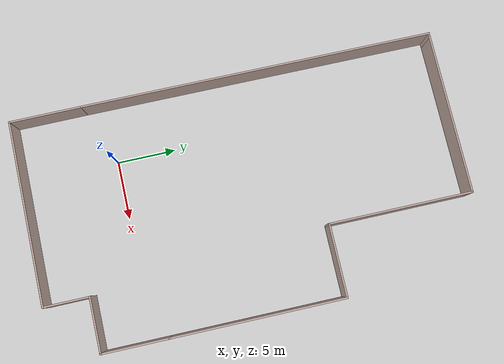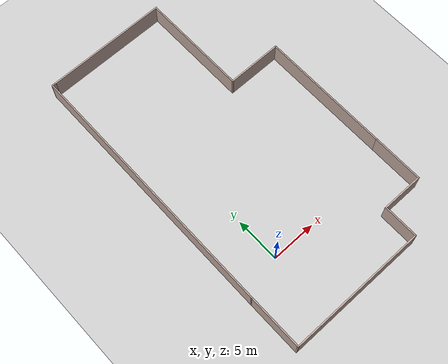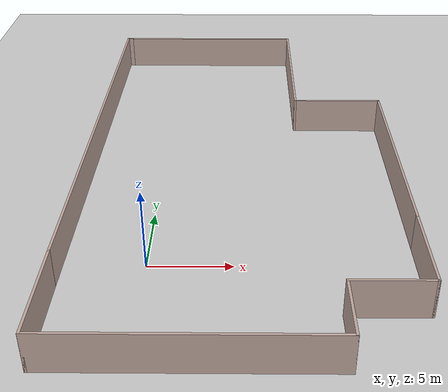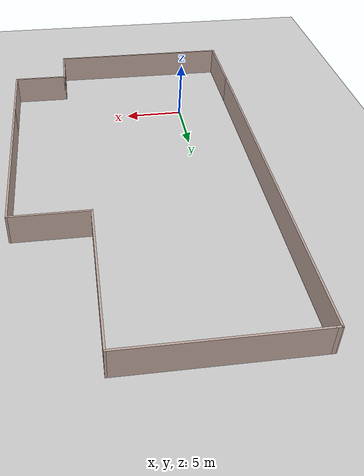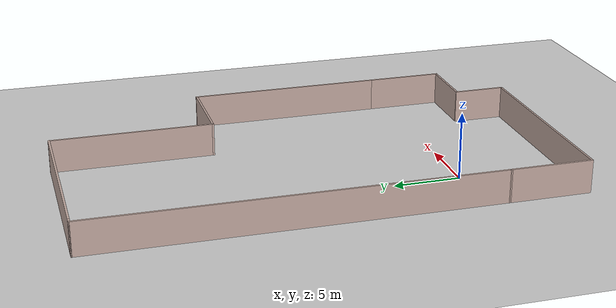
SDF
<sdf version="1.6">
 <world name="default">
  <light name="sun" type="directional">
   <pose>0 0 10 0 -0 0</pose>
   <diffuse>0.8 0.8 0.8 1</diffuse>
   <specular>0.2 0.2 0.2 1</specular>
   <attenuation>
    <range>1000</range>
    <constant>0.9</constant>
    <linear>0.01</linear>
    <quadratic>0.001</quadratic>
   </attenuation>
   <direction>-0.5 0.1 -0.9</direction>
  </light>
  <model name="ground_plane">
   <static>1</static>
   <link name="link">
    <collision name="collision">
     <geometry><plane><normal>0 0 1</normal><size>100 100</size></plane></geometry>
     <surface>
      <contact><collide_bitmask>65535</collide_bitmask></contact>
      <friction><ode><mu>100</mu><mu2>50</mu2></ode></friction>
     </surface>
    </collision>
    <visual name="visual">
     <cast_shadows>0</cast_shadows>
     <geometry><plane><normal>0 0 1</normal><size>100 100</size></plane></geometry>
     <material>
      <script><uri>file://media/materials/scripts/gazebo.material</uri><name>Gazebo/Grey</name></script>
     </material>
    </visual>
   </link>
  </model>
  <gravity>0 0 -9.8</gravity>
  <magnetic_field>6e-06 2.3e-05 -4.2e-05</magnetic_field>
  <atmosphere type="adiabatic"/>
  <physics name="default_physics" default="0" type="ode">
   <max_step_size>0.001</max_step_size>
   <real_time_factor>1</real_time_factor>
   <real_time_update_rate>1000</real_time_update_rate>
  </physics>
  <scene><ambient>0.4 0.4 0.4 1</ambient><background>0.7 0.7 0.7 1</background><shadows>1</shadows></scene>
  <audio><device>default</device></audio>
  <spherical_coordinates>
   <surface_model>EARTH_WGS84</surface_model>
   <latitude_deg>0</latitude_deg>
   <longitude_deg>0</longitude_deg>
   <elevation>0</elevation>
   <heading_deg>0</heading_deg>
  </spherical_coordinates>
  <model name="myworld">
   <pose>5.27981 10.1952 0 0 -0 0</pose>
   <link name="Wall_1">
    <collision name="Wall_1_Collision">
     <geometry><box><size>6.25 0.15 2.5</size></box></geometry>
     <pose>0 0 1.25 0 -0 0</pose>
    </collision>
    <visual name="Wall_1_Visual">
     <pose>0 0 1.25 0 -0 0</pose>
     <geometry><box><size>6.25 0.15 2.5</size></box></geometry>
     <material>
      <script><uri>file://media/materials/scripts/gazebo.material</uri><name>Gazebo/Grey</name></script>
      <ambient>0.760784 0.662745 0.627451 1</ambient>
     </material>
     <meta><layer>0</layer></meta>
    </visual>
    <pose>-10.0998 -15.0252 0 0 -0 -1.5708</pose>
   </link>
   <link name="Wall_14">
    <collision name="Wall_14_Collision">
     <geometry><box><size>13.75 0.15 2.5</size></box></geometry>
     <pose>0 0 1.25 0 -0 0</pose>
    </collision>
    <visual name="Wall_14_Visual">
     <pose>0 0 1.25 0 -0 0</pose>
     <geometry><box><size>13.75 0.15 2.5</size></box></geometry>
     <material>
      <script><uri>file://media/materials/scripts/gazebo.material</uri><name>Gazebo/Grey</name></script>
      <ambient>0.760784 0.662745 0.627451 1</ambient>
     </material>
     <meta><layer>0</layer></meta>
    </visual>
    <pose>-2.79981 18.0748 0 0 -0 3.14159</pose>
   </link>
   <link name="Wall_15">
    <collision name="Wall_15_Collision">
     <geometry><box><size>0.5 0.15 2.5</size></box></geometry>
     <pose>0 0 1.25 0 -0 0</pose>
    </collision>
    <visual name="Wall_15_Visual">
     <pose>0 0 1.25 0 -0 0</pose>
     <geometry><box><size>0.5 0.15 2.5</size></box></geometry>
     <material>
      <script><uri>file://media/materials/scripts/gazebo.material</uri><name>Gazebo/Grey</name></script>
      <ambient>0.760784 0.662745 0.627451 1</ambient>
     </material>
     <meta><layer>0</layer></meta>
    </visual>
    <pose>-9.77481 18.0748 0 0 -0 3.14159</pose>
   </link>
   <link name="Wall_16">
    <collision name="Wall_16_Collision">
     <geometry><box><size>0.15 0.15 2.5</size></box></geometry>
     <pose>0 0 1.25 0 -0 0</pose>
    </collision>
    <visual name="Wall_16_Visual">
     <pose>0 0 1.25 0 -0 0</pose>
     <geometry><box><size>0.15 0.15 2.5</size></box></geometry>
     <material>
      <script><uri>file://media/materials/scripts/gazebo.material</uri><name>Gazebo/Grey</name></script>
      <ambient>0.760784 0.662745 0.627451 1</ambient>
     </material>
     <meta><layer>0</layer></meta>
    </visual>
    <pose>-9.94981 18.0748 0 0 -0 0</pose>
   </link>
   <link name="Wall_17">
    <collision name="Wall_17_Collision">
     <geometry><box><size>30.2004 0.15 2.5</size></box></geometry>
     <pose>0 0 1.25 0 -0 0</pose>
    </collision>
    <visual name="Wall_17_Visual">
     <pose>0 0 1.25 0 -0 0</pose>
     <geometry><box><size>30.2004 0.15 2.5</size></box></geometry>
     <material>
      <script><uri>file://media/materials/scripts/gazebo.material</uri><name>Gazebo/Grey</name></script>
      <ambient>0.760784 0.662745 0.627451 1</ambient>
     </material>
     <meta><layer>0</layer></meta>
    </visual>
    <pose>-10.0248 3.04981 0 0 -0 -1.57579</pose>
   </link>
   <link name="Wall_2">
    <collision name="Wall_2_Collision">
     <geometry><box><size>15.75 0.15 2.5</size></box></geometry>
     <pose>0 0 1.25 0 -0 0</pose>
    </collision>
    <visual name="Wall_2_Visual">
     <pose>0 0 1.25 0 -0 0</pose>
     <geometry><box><size>15.75 0.15 2.5</size></box></geometry>
     <material>
      <script><uri>file://media/materials/scripts/gazebo.material</uri><name>Gazebo/Grey</name></script>
      <ambient>0.760784 0.662745 0.627451 1</ambient>
     </material>
     <meta><layer>0</layer></meta>
    </visual>
    <pose>-2.29981 -18.0752 0 0 -0 0</pose>
   </link>
   <link name="Wall_3">
    <collision name="Wall_3_Collision">
     <geometry><box><size>4 0.15 2.5</size></box></geometry>
     <pose>0 0 1.25 0 -0 0</pose>
    </collision>
    <visual name="Wall_3_Visual">
     <pose>0 0 1.25 0 -0 0</pose>
     <geometry><box><size>4 0.15 2.5</size></box></geometry>
     <material>
      <script><uri>file://media/materials/scripts/gazebo.material</uri><name>Gazebo/Grey</name></script>
      <ambient>0.760784 0.662745 0.627451 1</ambient>
     </material>
     <meta><layer>0</layer></meta>
    </visual>
    <pose>5.50019 -16.1502 0 0 -0 1.5708</pose>
   </link>
   <link name="Wall_4">
    <collision name="Wall_4_Collision">
     <geometry><box><size>4.75 0.15 2.5</size></box></geometry>
     <pose>0 0 1.25 0 -0 0</pose>
    </collision>
    <visual name="Wall_4_Visual">
     <pose>0 0 1.25 0 -0 0</pose>
     <geometry><box><size>4.75 0.15 2.5</size></box></geometry>
     <material>
      <script><uri>file://media/materials/scripts/gazebo.material</uri><name>Gazebo/Grey</name></script>
      <ambient>0.760784 0.662745 0.627451 1</ambient>
     </material>
     <meta><layer>0</layer></meta>
    </visual>
    <pose>7.80019 -14.2252 0 0 -0 0</pose>
   </link>
   <link name="Wall_5">
    <collision name="Wall_5_Collision">
     <geometry><box><size>5.75 0.15 2.5</size></box></geometry>
     <pose>0 0 1.25 0 -0 0</pose>
    </collision>
    <visual name="Wall_5_Visual">
     <pose>0 0 1.25 0 -0 0</pose>
     <geometry><box><size>5.75 0.15 2.5</size></box></geometry>
     <material>
      <script><uri>file://media/materials/scripts/gazebo.material</uri><name>Gazebo/Grey</name></script>
      <ambient>0.760784 0.662745 0.627451 1</ambient>
     </material>
     <meta><layer>0</layer></meta>
    </visual>
    <pose>10.1002 -11.4252 0 0 -0 1.5708</pose>
   </link>
   <link name="Wall_6">
    <collision name="Wall_6_Collision">
     <geometry><box><size>14.75 0.15 2.5</size></box></geometry>
     <pose>0 0 1.25 0 -0 0</pose>
    </collision>
    <visual name="Wall_6_Visual">
     <pose>0 0 1.25 0 -0 0</pose>
     <geometry><box><size>14.75 0.15 2.5</size></box></geometry>
     <material>
      <script><uri>file://media/materials/scripts/gazebo.material</uri><name>Gazebo/Grey</name></script>
      <ambient>0.760784 0.662745 0.627451 1</ambient>
     </material>
     <meta><layer>0</layer></meta>
    </visual>
    <pose>10.1002 -1.32519 0 0 -0 1.5708</pose>
   </link>
   <link name="Wall_7">
    <collision name="Wall_7_Collision">
     <geometry><box><size>6.25 0.15 2.5</size></box></geometry>
     <pose>0 0 1.25 0 -0 0</pose>
    </collision>
    <visual name="Wall_7_Visual">
     <pose>0 0 1.25 0 -0 0</pose>
     <geometry><box><size>6.25 0.15 2.5</size></box></geometry>
     <material>
      <script><uri>file://media/materials/scripts/gazebo.material</uri><name>Gazebo/Grey</name></script>
      <ambient>0.760784 0.662745 0.627451 1</ambient>
     </material>
     <meta><layer>0</layer></meta>
    </visual>
    <pose>7.05019 5.97481 0 0 -0 3.14159</pose>
   </link>
   <link name="Wall_8">
    <collision name="Wall_8_Collision">
     <geometry><box><size>12.25 0.15 2.5</size></box></geometry>
     <pose>0 0 1.25 0 -0 0</pose>
    </collision>
    <visual name="Wall_8_Visual">
     <pose>0 0 1.25 0 -0 0</pose>
     <geometry><box><size>12.25 0.15 2.5</size></box></geometry>
     <material>
      <script><uri>file://media/materials/scripts/gazebo.material</uri><name>Gazebo/Grey</name></script>
      <ambient>0.760784 0.662745 0.627451 1</ambient>
     </material>
     <meta><layer>0</layer></meta>
    </visual>
    <pose>4.00019 12.0248 0 0 -0 1.5708</pose>
   </link>
   <static>1</static>
  </model>
 </world>
</sdf>
